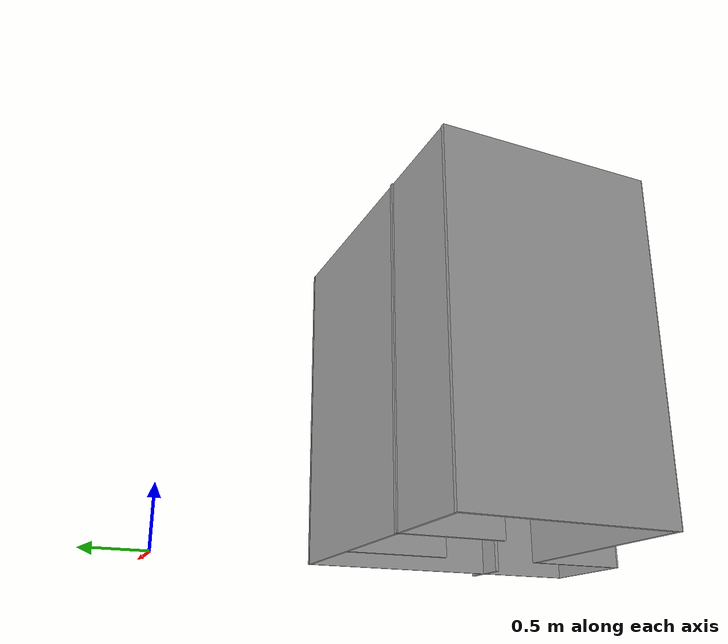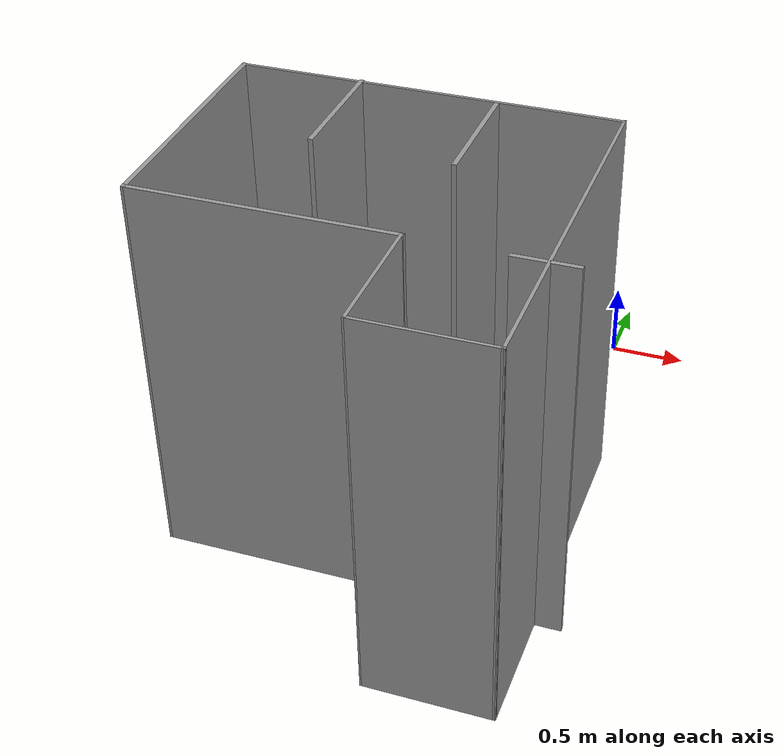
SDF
<?xml version='1.0'?>
<sdf version='1.7'>
  <model name='Demo'>
    <pose>-0.899929 -1.82878 0 0 -0 0</pose>
    <link name='Wall_11'>
      <collision name='Wall_11_Collision'>
        <geometry>
          <box>
            <size>1.6 0.03 2.5</size>
          </box>
        </geometry>
        <pose>0 0 1.25 0 -0 0</pose>
      </collision>
      <visual name='Wall_11_Visual'>
        <pose>0 0 1.25 0 -0 0</pose>
        <geometry>
          <box>
            <size>1.6 0.03 2.5</size>
          </box>
        </geometry>
        <material>
          <script>
            <uri>file://media/materials/scripts/gazebo.material</uri>
            <name>Gazebo/Grey</name>
          </script>
          <ambient>1 1 1 1</ambient>
        </material>
        <meta>
          <layer>0</layer>
        </meta>
      </visual>
      <pose>-0.454898 -1.03534 0 0 -0 3.14143</pose>
    </link>
    <link name='Wall_13'>
      <collision name='Wall_13_Collision'>
        <geometry>
          <box>
            <size>1.61327 0.03 2.5</size>
          </box>
        </geometry>
        <pose>0 0 1.25 0 -0 0</pose>
      </collision>
      <visual name='Wall_13_Visual'>
        <pose>0 0 1.25 0 -0 0</pose>
        <geometry>
          <box>
            <size>1.61327 0.03 2.5</size>
          </box>
        </geometry>
        <material>
          <script>
            <uri>file://media/materials/scripts/gazebo.material</uri>
            <name>Gazebo/Grey</name>
          </script>
          <ambient>1 1 1 1</ambient>
        </material>
        <meta>
          <layer>0</layer>
        </meta>
      </visual>
      <pose>-1.25457 -0.24372 0 0 -0 1.58911</pose>
    </link>
    <link name='Wall_15'>
      <collision name='Wall_15_Collision'>
        <geometry>
          <box>
            <size>0.38 0.03 2.5</size>
          </box>
        </geometry>
        <pose>0 0 1.25 0 -0 0</pose>
      </collision>
      <visual name='Wall_15_Visual'>
        <pose>0 0 1.25 0 -0 0</pose>
        <geometry>
          <box>
            <size>0.38 0.03 2.5</size>
          </box>
        </geometry>
        <material>
          <script>
            <uri>file://media/materials/scripts/gazebo.material</uri>
            <name>Gazebo/Grey</name>
          </script>
          <ambient>1 1 1 1</ambient>
        </material>
        <meta>
          <layer>0</layer>
        </meta>
      </visual>
      <pose>1.09434 -1.04454 0 0 -0 0</pose>
    </link>
    <link name='Wall_19'>
      <collision name='Wall_19_Collision'>
        <geometry>
          <box>
            <size>0.8 0.03 2.5</size>
          </box>
        </geometry>
        <pose>0 0 1.25 0 -0 0</pose>
      </collision>
      <visual name='Wall_19_Visual'>
        <pose>0 0 1.25 0 -0 0</pose>
        <geometry>
          <box>
            <size>0.8 0.03 2.5</size>
          </box>
        </geometry>
        <material>
          <script>
            <uri>file://media/materials/scripts/gazebo.material</uri>
            <name>Gazebo/Grey</name>
          </script>
          <ambient>1 1 1 1</ambient>
        </material>
        <meta>
          <layer>0</layer>
        </meta>
      </visual>
      <pose>-0.504896 0.166736 0 0 -0 -1.5708</pose>
    </link>
    <link name='Wall_2'>
      <collision name='Wall_2_Collision'>
        <geometry>
          <box>
            <size>2.38246 0.02 2.5</size>
          </box>
        </geometry>
        <pose>0 0 1.25 0 -0 0</pose>
      </collision>
      <visual name='Wall_2_Visual'>
        <pose>0 0 1.25 0 -0 0</pose>
        <geometry>
          <box>
            <size>2.38246 0.02 2.5</size>
          </box>
        </geometry>
        <material>
          <script>
            <uri>file://media/materials/scripts/gazebo.material</uri>
            <name>Gazebo/Grey</name>
          </script>
          <ambient>1 1 1 1</ambient>
        </material>
        <meta>
          <layer>0</layer>
        </meta>
      </visual>
      <pose>1.11123 -0.637511 0 0 -0 -1.5708</pose>
    </link>
    <link name='Wall_22'>
      <collision name='Wall_22_Collision'>
        <geometry>
          <box>
            <size>0.8 0.03 2.5</size>
          </box>
        </geometry>
        <pose>0 0 1.25 0 -0 0</pose>
      </collision>
      <visual name='Wall_22_Visual'>
        <pose>0 0 1.25 0 -0 0</pose>
        <geometry>
          <box>
            <size>0.8 0.03 2.5</size>
          </box>
        </geometry>
        <material>
          <script>
            <uri>file://media/materials/scripts/gazebo.material</uri>
            <name>Gazebo/Grey</name>
          </script>
          <ambient>1 1 1 1</ambient>
        </material>
        <meta>
          <layer>0</layer>
        </meta>
      </visual>
      <pose>0.351802 0.143251 0 0 -0 -1.5708</pose>
    </link>
    <link name='Wall_4'>
      <collision name='Wall_4_Collision'>
        <geometry>
          <box>
            <size>0.801 0.02 2.5</size>
          </box>
        </geometry>
        <pose>0 0 1.25 0 -0 0</pose>
      </collision>
      <visual name='Wall_4_Visual'>
        <pose>0 0 1.25 0 -0 0</pose>
        <geometry>
          <box>
            <size>0.801 0.02 2.5</size>
          </box>
        </geometry>
        <material>
          <script>
            <uri>file://media/materials/scripts/gazebo.material</uri>
            <name>Gazebo/Grey</name>
          </script>
          <ambient>1 1 1 1</ambient>
        </material>
        <meta>
          <layer>0</layer>
        </meta>
      </visual>
      <pose>0.720755 -1.8171 0 0 -0 3.13741</pose>
    </link>
    <link name='Wall_6'>
      <collision name='Wall_6_Collision'>
        <geometry>
          <box>
            <size>2.4 0.02 2.5</size>
          </box>
        </geometry>
        <pose>0 0 1.25 0 -0 0</pose>
      </collision>
      <visual name='Wall_6_Visual'>
        <pose>0 0 1.25 0 -0 0</pose>
        <geometry>
          <box>
            <size>2.4 0.02 2.5</size>
          </box>
        </geometry>
        <material>
          <script>
            <uri>file://media/materials/scripts/gazebo.material</uri>
            <name>Gazebo/Grey</name>
          </script>
          <ambient>1 1 1 1</ambient>
        </material>
        <meta>
          <layer>0</layer>
        </meta>
      </visual>
      <pose>-0.078919 0.543869 0 0 -0 3.13831</pose>
    </link>
    <link name='Wall_8'>
      <collision name='Wall_8_Collision'>
        <geometry>
          <box>
            <size>0.8 0.02 2.5</size>
          </box>
        </geometry>
        <pose>0 0 1.25 0 -0 0</pose>
      </collision>
      <visual name='Wall_8_Visual'>
        <pose>0 0 1.25 0 -0 0</pose>
        <geometry>
          <box>
            <size>0.8 0.02 2.5</size>
          </box>
        </geometry>
        <material>
          <script>
            <uri>file://media/materials/scripts/gazebo.material</uri>
            <name>Gazebo/Grey</name>
          </script>
          <ambient>1 1 1 1</ambient>
        </material>
        <meta>
          <layer>0</layer>
        </meta>
      </visual>
      <pose>0.330276 -1.42547 0 0 -0 1.5708</pose>
    </link>
    <static>1</static>
  </model>
</sdf>
